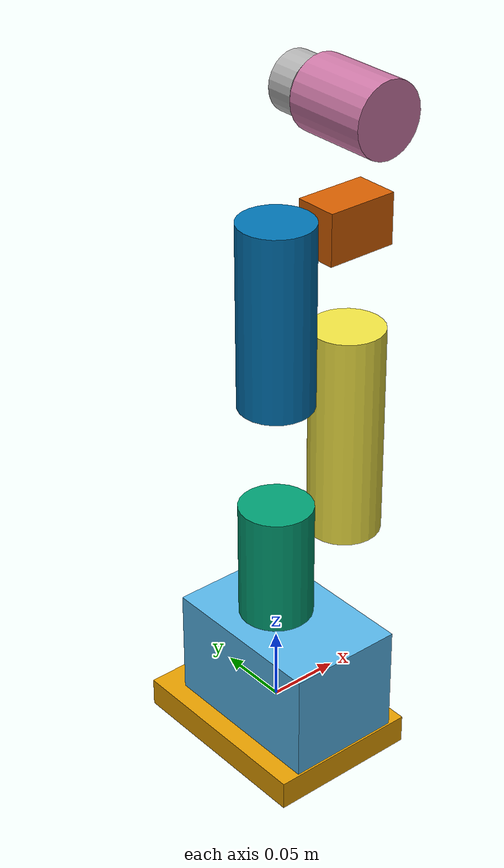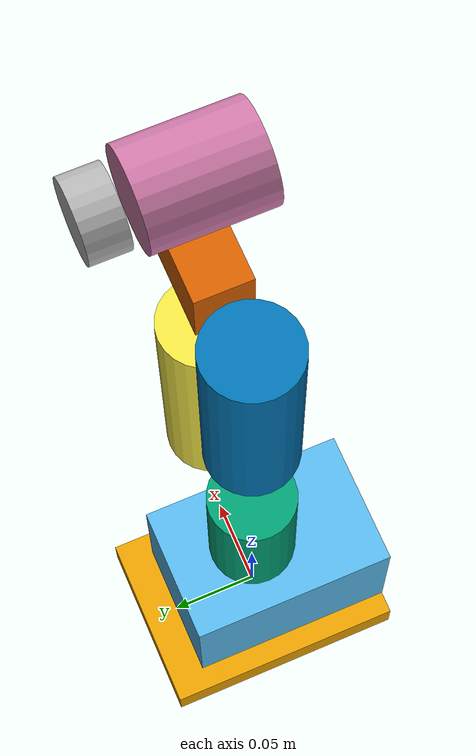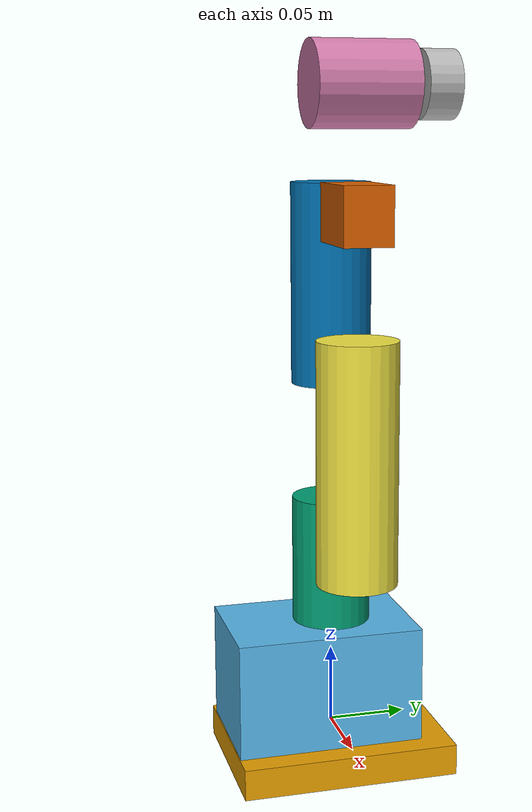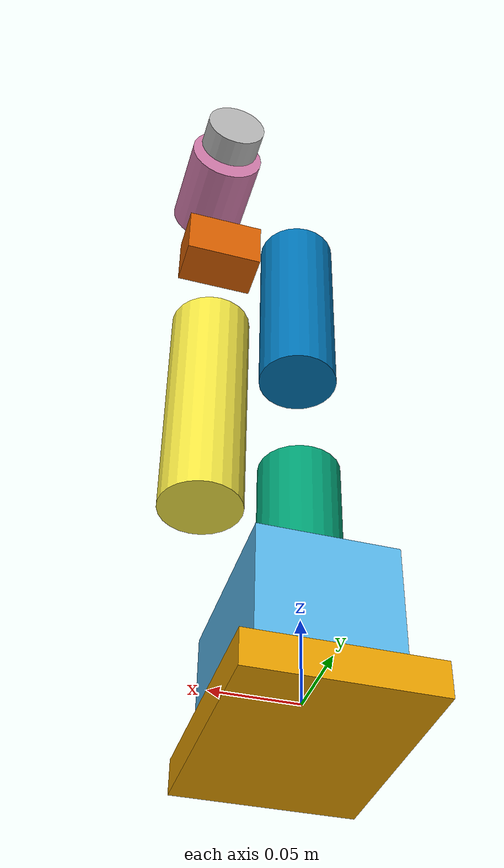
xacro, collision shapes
<?xml version="1.0"?>
<robot xmlns:xacro="http://www.ros.org/wiki/xacro">

    <link name="pre_base_link">
        <visual>
                <geometry>
                    <mesh filename="file://$(find my_robot_description)/meshes/g_shape_base_v2_0/visual/base_link.dae"/>
                </geometry>
                <origin xyz="0.0 0 -0.03" rpy="0 0 ${pi/2}"/>
            </visual>
            <collision>
                <geometry>
                    <box size="0.105 0.14 0.02"/>
                </geometry>
                <origin xyz="0.0 0.0 -0.015" rpy="0 0 0"/>
            </collision>
    </link>
    <link name="base_link">
        <visual>
        <geometry>
          <mesh filename="file://$(find my_robot_description)/meshes/mycobot_280/visual/link1.dae"/>
        </geometry>
        <origin xyz="0.0 0 0" rpy="0 0 ${-pi/2}"/>
      </visual>
      <collision>
        <geometry>
          <box size="0.08 0.12 0.075"/>
        </geometry>
        <origin xyz="0.0 -0.01 0.034" rpy="0 0 0"/>
      </collision>
    </link>

    <link name="shoulder_link">
        <visual>
        <geometry>
          <mesh filename="file://$(find my_robot_description)/meshes/mycobot_280/visual/link2.dae"/>
        </geometry>
        <origin xyz="0.0 0 -0.06096" rpy="0 0 ${-pi/2}"/>
      </visual>
      <collision>
        <geometry>
          <cylinder radius="0.025" length="0.085"/>
        </geometry>
        <origin xyz="0.0 0 -0.02" rpy="0 0 ${-pi/2}"/>
      </collision>
    </link>

    <link name="arm_link">
        <visual>
        <geometry>
          <mesh filename="file://$(find my_robot_description)/meshes/mycobot_280/visual/link3.dae"/>
        </geometry>
        <origin xyz="0.0 0 0.03256" rpy="0 ${-pi/2} 0"/>
      </visual>
      <collision>
        <geometry>
          <cylinder radius="0.025" length="0.15"/>
        </geometry>
        <origin xyz="-0.058 0 0.059" rpy="0 ${-pi/2} 0"/>
      </collision>
    </link>

    <link name="elbow_link">
        <visual>
        <geometry>
          <mesh filename="file://$(find my_robot_description)/meshes/mycobot_280/visual/link4.dae"/>
        </geometry>
        <origin xyz="0.0 0 0.03056" rpy="0 ${-pi/2} 0"/>
      </visual>
      <collision>
        <geometry>
          <cylinder radius="0.025" length="0.125"/>
        </geometry>
        <origin xyz="-0.05 0 0.0" rpy="0 ${-pi/2} 0"/>
      </collision>
    </link>

    <link name="forearm_link">
        <visual>
        <geometry>
          <mesh filename="file://$(find my_robot_description)/meshes/mycobot_280/visual/link5.dae"/>
        </geometry>
        <origin xyz="0.0 0 -0.03356" rpy="${-pi/2} 0 0"/>
      </visual>
      <collision>
        <geometry>
          <box size="0.03 0.035 0.05"/>
        </geometry>
        <origin xyz="0.0 0 -0.005" rpy="0 0.0 0"/>
      </collision>
    </link>

    <link name="wrist_link">
        <visual>
        <geometry>
          <mesh filename="file://$(find my_robot_description)/meshes/mycobot_280/visual/link6.dae"/>
        </geometry>
        <origin xyz="0 0.00 -0.038" rpy="0 0 0"/>
      </visual>
      <collision>
        <geometry>
          <cylinder radius="0.025" length="0.06"/>
        </geometry>
        <origin xyz="0 0.00 0.0" rpy="${-pi/2} 0 0"/>
      </collision>
    </link>

    <link name="hand_link">
        <visual>
        <geometry>
          <mesh filename="file://$(find my_robot_description)/meshes/mycobot_280/visual/link7.dae"/>
        </geometry>
        <origin xyz="0.0 0 -0.012" rpy="0 0 0"/>
      </visual>
      <collision>
        <geometry>
          <cylinder radius="0.02" length="0.02"/>
        </geometry>
        <origin xyz="0 0.00 0.0" rpy="0 0 0"/>
      </collision>
    </link>

    <link name="tool_link">
    </link>

    <joint name="joint0" type="fixed">
        <parent link="pre_base_link" />
        <child link="base_link"/>
        <origin xyz="0 0 0" rpy="0 0 0"/>
    </joint>

    <joint name="joint1" type="revolute">
        <parent link="base_link" />
        <child link="shoulder_link"/>
        <origin xyz="0 0 0.13156" rpy="0 0 ${pi/2}"/>
        <axis xyz="0 0 1" />
        <limit effort="1000.0" velocity="1.0" lower="-2.879793" upper="2.879793" />
    </joint>

    <joint name="joint2" type="revolute">
        <parent link="shoulder_link" />
        <child link="arm_link"/>
        <origin xyz="0 0 -0.001" rpy="0 ${pi/2} ${-pi/2}"/>
        <axis xyz="0 0 1" />
        <limit effort="1000.0" velocity="1.0" lower="-2.879793" upper="2.879793" />
    </joint>

    <joint name="joint3" type="revolute">
        <parent link="arm_link" />
        <child link="elbow_link"/>
        <origin xyz="-0.1104 0 0" rpy="0 0 0"/>
        <axis xyz="0 0 1" />
        <limit effort="1000.0" velocity="1.0" lower="-2.879793" upper="2.879793" />
    </joint>

    <joint name="joint4" type="revolute">
        <parent link="elbow_link" />
        <child link="forearm_link"/>
        <origin xyz="-0.096 0 0.06062" rpy="0 0 ${-pi/2}"/>
        <axis xyz="0 0 1" />
        <limit effort="1000.0" velocity="1.0" lower="-2.879793" upper="2.879793" />
    </joint>

    <joint name="joint5" type="revolute">
        <parent link="forearm_link" />
        <child link="wrist_link"/>
        <origin xyz="0 -0.07318 0" rpy="${pi/2} ${-pi/2} 0"/>
        <axis xyz="0 0 1" />
        <limit effort="1000.0" velocity="1.0" lower="-2.879793" upper="2.879793" />
    </joint>

    <joint name="joint6" type="revolute">
        <parent link="wrist_link" />
        <child link="hand_link"/>
        <origin xyz="0 0.0456 0" rpy="${-pi/2} 0 0"/>
        <axis xyz="0 0 1" />
        <limit effort="1000.0" velocity="1.0" lower="-3.05" upper="3.05" />
    </joint>

    <joint name="hand_tool_joint" type="fixed">
        <parent link="hand_link" />
        <child link="tool_link"/>
        <origin xyz="0 0 0.012" rpy="0 0 0"/>
    </joint>
</robot>
